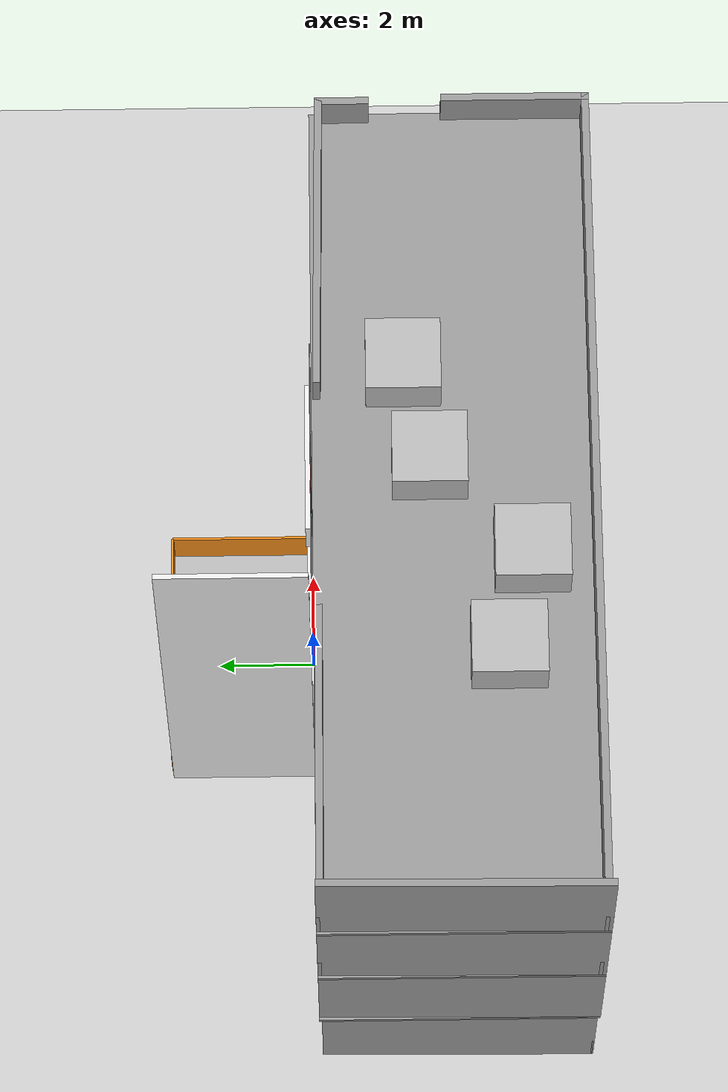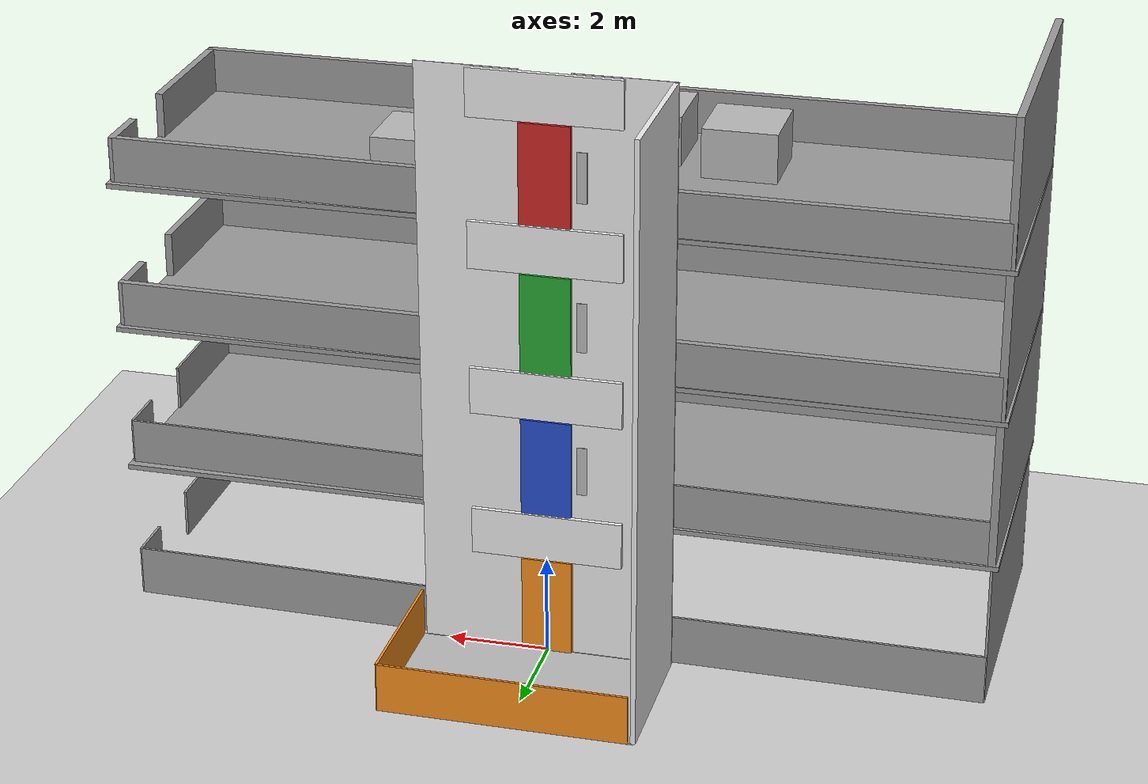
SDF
<sdf version="1.7">
 <world name="default">
  <model name="ground_plane">
   <static>1</static>
   <link name="link">
    <collision name="collision">
     <geometry><plane><normal>0 0 1</normal><size>100 100</size></plane></geometry>
     <surface><friction><ode><mu>100</mu><mu2>50</mu2></ode></friction></surface>
    </collision>
    <visual name="visual">
     <cast_shadows>0</cast_shadows>
     <geometry><plane><normal>0 0 1</normal><size>100 100</size></plane></geometry>
     <material>
      <script><uri>file://media/materials/scripts/gazebo.material</uri><name>Gazebo/Grey</name></script>
     </material>
    </visual>
   </link>
  </model>
  <light name="sun" type="directional">
   <pose>0 0 10 0 -0 0</pose>
   <diffuse>0.8 0.8 0.8 1</diffuse>
   <specular>0.2 0.2 0.2 1</specular>
   <attenuation>
    <range>1000</range>
    <constant>0.9</constant>
    <linear>0.01</linear>
    <quadratic>0.001</quadratic>
   </attenuation>
   <direction>-0.5 0.1 -0.9</direction>
   <spot><inner_angle>0</inner_angle><outer_angle>0</outer_angle><falloff>0</falloff></spot>
  </light>
  <model name="multifloor_building">
   <pose>0 -2.9 0 0 -0 0</pose>
   <link name="Floor_6">
    <collision name="Floor_6_Collision">
     <geometry><box><size>17.4048 5.71356 0.1</size></box></geometry>
     <pose>0 0 0.05 0 -0 0</pose>
    </collision>
    <visual name="Floor_6_Visual">
     <pose>0 0 0.05 0 -0 0</pose>
     <geometry><box><size>17.4048 5.71356 0.1</size></box></geometry>
     <material>
      <script><uri>file://media/materials/scripts/gazebo.material</uri><name>Gazebo/Grey</name></script>
      <ambient>1 1 1 1</ambient>
     </material>
     <meta><layer>1</layer></meta>
    </visual>
    <pose>-0.025045 -0.016611 2.88 0 -0 0</pose>
   </link>
   <link name="Floor_8">
    <collision name="Floor_8_Collision">
     <geometry><box><size>17.4549 5.71356 0.1</size></box></geometry>
     <pose>0 0 0.05 0 -0 0</pose>
    </collision>
    <visual name="Floor_8_Visual">
     <pose>0 0 0.05 0 -0 0</pose>
     <geometry><box><size>17.4549 5.71356 0.1</size></box></geometry>
     <material>
      <script><uri>file://media/materials/scripts/gazebo.material</uri><name>Gazebo/Grey</name></script>
      <ambient>1 1 1 1</ambient>
     </material>
     <meta><layer>2</layer></meta>
    </visual>
    <pose>-0 -0.016611 5.88 0 -0 0</pose>
   </link>
   <link name="Floor_9">
    <collision name="Floor_9_Collision">
     <geometry><box><size>17.4549 5.71356 0.1</size></box></geometry>
     <pose>0 0 0.05 0 -0 0</pose>
    </collision>
    <visual name="Floor_9_Visual">
     <pose>0 0 0.05 0 -0 0</pose>
     <geometry><box><size>17.4549 5.71356 0.1</size></box></geometry>
     <material>
      <script><uri>file://media/materials/scripts/gazebo.material</uri><name>Gazebo/Grey</name></script>
      <ambient>1 1 1 1</ambient>
     </material>
     <meta><layer>3</layer></meta>
    </visual>
    <pose>-0 -0.016611 8.88 0 -0 0</pose>
   </link>
   <link name="Wall_11">
    <collision name="Wall_11_Collision">
     <geometry><box><size>6.1448 0.05 1</size></box></geometry>
     <pose>0 0 0.5 0 -0 0</pose>
    </collision>
    <visual name="Wall_11_Visual">
     <pose>0 0 0.5 0 -0 0</pose>
     <geometry><box><size>6.1448 0.05 1</size></box></geometry>
     <material>
      <script><uri>file://media/materials/scripts/gazebo.material</uri><name>Gazebo/Grey</name></script>
      <ambient>1 1 1 1</ambient>
     </material>
     <meta><layer>0</layer></meta>
    </visual>
    <pose>5.55323 2.68693 0 0 -0 3.1273</pose>
   </link>
   <link name="Wall_13">
    <collision name="Wall_13_Collision">
     <geometry><box><size>2.9 0.05 1</size></box></geometry>
     <pose>0 0 0.5 0 -0 0</pose>
    </collision>
    <visual name="Wall_13_Visual">
     <pose>0 0 0.5 0 -0 0</pose>
     <geometry><box><size>2.9 0.05 1</size></box></geometry>
     <material>
      <script><uri>file://media/materials/scripts/gazebo.material</uri><name>Gazebo/Grey</name></script>
      <ambient>1 1 1 1</ambient>
     </material>
     <meta><layer>0</layer></meta>
    </visual>
    <pose>8.65232 -1.34161 0 0 -0 1.5708</pose>
   </link>
   <link name="Wall_15">
    <collision name="Wall_15_Collision">
     <geometry><box><size>1 0.05 1</size></box></geometry>
     <pose>0 0 0.5 0 -0 0</pose>
    </collision>
    <visual name="Wall_15_Visual">
     <pose>0 0 0.5 0 -0 0</pose>
     <geometry><box><size>1 0.05 1</size></box></geometry>
     <material>
      <script><uri>file://media/materials/scripts/gazebo.material</uri><name>Gazebo/Grey</name></script>
      <ambient>1 1 1 1</ambient>
     </material>
     <meta><layer>0</layer></meta>
    </visual>
    <pose>8.60032 2.16839 0 0 -0 -1.5708</pose>
   </link>
   <link name="Wall_5">
    <collision name="Wall_5_Collision">
     <geometry><box><size>6.28057 0.05 1</size></box></geometry>
     <pose>0 0 0.5 0 -0 0</pose>
    </collision>
    <visual name="Wall_5_Visual">
     <pose>0 0 0.5 0 -0 0</pose>
     <geometry><box><size>6.28057 0.05 1</size></box></geometry>
     <material>
      <script><uri>file://media/materials/scripts/gazebo.material</uri><name>Gazebo/Grey</name></script>
      <ambient>1 1 1 1</ambient>
     </material>
     <meta><layer>0</layer></meta>
    </visual>
    <pose>-5.45879 2.74982 0 0 -0 3.13686</pose>
   </link>
   <link name="Wall_53">
    <collision name="Wall_53_Collision">
     <geometry><box><size>6.30021 0.05 1</size></box></geometry>
     <pose>0 0 0.5 0 -0 0</pose>
    </collision>
    <visual name="Wall_53_Visual">
     <pose>0 0 0.5 0 -0 0</pose>
     <geometry><box><size>6.30021 0.05 1</size></box></geometry>
     <material>
      <script><uri>file://media/materials/scripts/gazebo.material</uri><name>Gazebo/Grey</name></script>
      <ambient>1 1 1 1</ambient>
     </material>
     <meta><layer>1</layer></meta>
    </visual>
    <pose>-5.46861 2.74973 2.88 0 -0 3.1369</pose>
   </link>
   <link name="Wall_54">
    <collision name="Wall_54_Collision">
     <geometry><box><size>5.7123 0.15 3</size></box></geometry>
     <pose>0 0 1.5 0 -0 0</pose>
    </collision>
    <visual name="Wall_54_Visual">
     <pose>0 0 1.5 0 -0 0</pose>
     <geometry><box><size>5.7123 0.15 3</size></box></geometry>
     <material>
      <script><uri>file://media/materials/scripts/gazebo.material</uri><name>Gazebo/Grey</name></script>
      <ambient>1 1 1 1</ambient>
     </material>
     <meta><layer>1</layer></meta>
    </visual>
    <pose>-8.62268 -0.016611 2.88 0 -0 -1.58122</pose>
   </link>
   <link name="Wall_55">
    <collision name="Wall_55_Collision">
     <geometry><box><size>17.354 0.05 1</size></box></geometry>
     <pose>0 0 0.5 0 -0 0</pose>
    </collision>
    <visual name="Wall_55_Visual">
     <pose>0 0 0.5 0 -0 0</pose>
     <geometry><box><size>17.354 0.05 1</size></box></geometry>
     <material>
      <script><uri>file://media/materials/scripts/gazebo.material</uri><name>Gazebo/Grey</name></script>
      <ambient>1 1 1 1</ambient>
     </material>
     <meta><layer>1</layer></meta>
    </visual>
    <pose>0.000322 -2.78211 2.88 0 -0 0.001791</pose>
   </link>
   <link name="Wall_56">
    <collision name="Wall_56_Collision">
     <geometry><box><size>6.1448 0.05 1</size></box></geometry>
     <pose>0 0 0.5 0 -0 0</pose>
    </collision>
    <visual name="Wall_56_Visual">
     <pose>0 0 0.5 0 -0 0</pose>
     <geometry><box><size>6.1448 0.05 1</size></box></geometry>
     <material>
      <script><uri>file://media/materials/scripts/gazebo.material</uri><name>Gazebo/Grey</name></script>
      <ambient>1 1 1 1</ambient>
     </material>
     <meta><layer>1</layer></meta>
    </visual>
    <pose>5.55323 2.68693 2.88 0 -0 3.1273</pose>
   </link>
   <link name="Wall_57">
    <collision name="Wall_57_Collision">
     <geometry><box><size>2.9 0.05 1</size></box></geometry>
     <pose>0 0 0.5 0 -0 0</pose>
    </collision>
    <visual name="Wall_57_Visual">
     <pose>0 0 0.5 0 -0 0</pose>
     <geometry><box><size>2.9 0.05 1</size></box></geometry>
     <material>
      <script><uri>file://media/materials/scripts/gazebo.material</uri><name>Gazebo/Grey</name></script>
      <ambient>1 1 1 1</ambient>
     </material>
     <meta><layer>1</layer></meta>
    </visual>
    <pose>8.65232 -1.34161 2.88 0 -0 1.5708</pose>
   </link>
   <link name="Wall_58">
    <collision name="Wall_58_Collision">
     <geometry><box><size>1 0.05 1</size></box></geometry>
     <pose>0 0 0.5 0 -0 0</pose>
    </collision>
    <visual name="Wall_58_Visual">
     <pose>0 0 0.5 0 -0 0</pose>
     <geometry><box><size>1 0.05 1</size></box></geometry>
     <material>
      <script><uri>file://media/materials/scripts/gazebo.material</uri><name>Gazebo/Grey</name></script>
      <ambient>1 1 1 1</ambient>
     </material>
     <meta><layer>1</layer></meta>
    </visual>
    <pose>8.60032 2.16839 2.88 0 -0 -1.5708</pose>
   </link>
   <link name="Wall_6">
    <collision name="Wall_6_Collision">
     <geometry><box><size>5.61248 0.05 2.88</size></box></geometry>
     <pose>0 0 1.44 0 -0 0</pose>
    </collision>
    <visual name="Wall_6_Visual">
     <pose>0 0 1.44 0 -0 0</pose>
     <geometry><box><size>5.61248 0.05 2.88</size></box></geometry>
     <material>
      <script><uri>file://media/materials/scripts/gazebo.material</uri><name>Gazebo/Grey</name></script>
      <ambient>1 1 1 1</ambient>
     </material>
     <meta><layer>0</layer></meta>
    </visual>
    <pose>-8.62292 -0.01652 0 0 -0 -1.58114</pose>
   </link>
   <link name="Wall_65">
    <collision name="Wall_65_Collision">
     <geometry><box><size>6.40021 0.15 1</size></box></geometry>
     <pose>0 0 0.5 0 -0 0</pose>
    </collision>
    <visual name="Wall_65_Visual">
     <pose>0 0 0.5 0 -0 0</pose>
     <geometry><box><size>6.40021 0.15 1</size></box></geometry>
     <material>
      <script><uri>file://media/materials/scripts/gazebo.material</uri><name>Gazebo/Grey</name></script>
      <ambient>1 1 1 1</ambient>
     </material>
     <meta><layer>2</layer></meta>
    </visual>
    <pose>-5.46861 2.74973 5.88 0 -0 3.1369</pose>
   </link>
   <link name="Wall_66">
    <collision name="Wall_66_Collision">
     <geometry><box><size>5.7123 0.15 3</size></box></geometry>
     <pose>0 0 1.5 0 -0 0</pose>
    </collision>
    <visual name="Wall_66_Visual">
     <pose>0 0 1.5 0 -0 0</pose>
     <geometry><box><size>5.7123 0.15 3</size></box></geometry>
     <material>
      <script><uri>file://media/materials/scripts/gazebo.material</uri><name>Gazebo/Grey</name></script>
      <ambient>1 1 1 1</ambient>
     </material>
     <meta><layer>2</layer></meta>
    </visual>
    <pose>-8.62268 -0.016611 5.88 0 -0 -1.58122</pose>
   </link>
   <link name="Wall_67">
    <collision name="Wall_67_Collision">
     <geometry><box><size>17.454 0.15 1</size></box></geometry>
     <pose>0 0 0.5 0 -0 0</pose>
    </collision>
    <visual name="Wall_67_Visual">
     <pose>0 0 0.5 0 -0 0</pose>
     <geometry><box><size>17.454 0.15 1</size></box></geometry>
     <material>
      <script><uri>file://media/materials/scripts/gazebo.material</uri><name>Gazebo/Grey</name></script>
      <ambient>1 1 1 1</ambient>
     </material>
     <meta><layer>2</layer></meta>
    </visual>
    <pose>0.000322 -2.78211 5.88 0 -0 0.001791</pose>
   </link>
   <link name="Wall_68">
    <collision name="Wall_68_Collision">
     <geometry><box><size>6.2448 0.15 1</size></box></geometry>
     <pose>0 0 0.5 0 -0 0</pose>
    </collision>
    <visual name="Wall_68_Visual">
     <pose>0 0 0.5 0 -0 0</pose>
     <geometry><box><size>6.2448 0.15 1</size></box></geometry>
     <material>
      <script><uri>file://media/materials/scripts/gazebo.material</uri><name>Gazebo/Grey</name></script>
      <ambient>1 1 1 1</ambient>
     </material>
     <meta><layer>2</layer></meta>
    </visual>
    <pose>5.55323 2.68693 5.88 0 -0 3.1273</pose>
   </link>
   <link name="Wall_69">
    <collision name="Wall_69_Collision">
     <geometry><box><size>3 0.15 1</size></box></geometry>
     <pose>0 0 0.5 0 -0 0</pose>
    </collision>
    <visual name="Wall_69_Visual">
     <pose>0 0 0.5 0 -0 0</pose>
     <geometry><box><size>3 0.15 1</size></box></geometry>
     <material>
      <script><uri>file://media/materials/scripts/gazebo.material</uri><name>Gazebo/Grey</name></script>
      <ambient>1 1 1 1</ambient>
     </material>
     <meta><layer>2</layer></meta>
    </visual>
    <pose>8.65232 -1.34161 5.88 0 -0 1.5708</pose>
   </link>
   <link name="Wall_7">
    <collision name="Wall_7_Collision">
     <geometry><box><size>17.354 0.05 1</size></box></geometry>
     <pose>0 0 0.5 0 -0 0</pose>
    </collision>
    <visual name="Wall_7_Visual">
     <pose>0 0 0.5 0 -0 0</pose>
     <geometry><box><size>17.354 0.05 1</size></box></geometry>
     <material>
      <script><uri>file://media/materials/scripts/gazebo.material</uri><name>Gazebo/Grey</name></script>
      <ambient>1 1 1 1</ambient>
     </material>
     <meta><layer>0</layer></meta>
    </visual>
    <pose>0.000322 -2.78211 0 0 -0 0.001791</pose>
   </link>
   <link name="Wall_70">
    <collision name="Wall_70_Collision">
     <geometry><box><size>1.1 0.15 1</size></box></geometry>
     <pose>0 0 0.5 0 -0 0</pose>
    </collision>
    <visual name="Wall_70_Visual">
     <pose>0 0 0.5 0 -0 0</pose>
     <geometry><box><size>1.1 0.15 1</size></box></geometry>
     <material>
      <script><uri>file://media/materials/scripts/gazebo.material</uri><name>Gazebo/Grey</name></script>
      <ambient>1 1 1 1</ambient>
     </material>
     <meta><layer>2</layer></meta>
    </visual>
    <pose>8.60032 2.16839 5.88 0 -0 -1.5708</pose>
   </link>
   <link name="Wall_71">
    <collision name="Wall_71_Collision">
     <geometry><box><size>6.40021 0.15 1</size></box></geometry>
     <pose>0 0 0.5 0 -0 0</pose>
    </collision>
    <visual name="Wall_71_Visual">
     <pose>0 0 0.5 0 -0 0</pose>
     <geometry><box><size>6.40021 0.15 1</size></box></geometry>
     <material>
      <script><uri>file://media/materials/scripts/gazebo.material</uri><name>Gazebo/Grey</name></script>
      <ambient>1 1 1 1</ambient>
     </material>
     <meta><layer>3</layer></meta>
    </visual>
    <pose>-5.46861 2.74973 8.88 0 -0 3.1369</pose>
   </link>
   <link name="Wall_72">
    <collision name="Wall_72_Collision">
     <geometry><box><size>5.7123 0.15 3</size></box></geometry>
     <pose>0 0 1.5 0 -0 0</pose>
    </collision>
    <visual name="Wall_72_Visual">
     <pose>0 0 1.5 0 -0 0</pose>
     <geometry><box><size>5.7123 0.15 3</size></box></geometry>
     <material>
      <script><uri>file://media/materials/scripts/gazebo.material</uri><name>Gazebo/Grey</name></script>
      <ambient>1 1 1 1</ambient>
     </material>
     <meta><layer>3</layer></meta>
    </visual>
    <pose>-8.62268 -0.016611 8.88 0 -0 -1.58122</pose>
   </link>
   <link name="Wall_73">
    <collision name="Wall_73_Collision">
     <geometry><box><size>17.454 0.15 1</size></box></geometry>
     <pose>0 0 0.5 0 -0 0</pose>
    </collision>
    <visual name="Wall_73_Visual">
     <pose>0 0 0.5 0 -0 0</pose>
     <geometry><box><size>17.454 0.15 1</size></box></geometry>
     <material>
      <script><uri>file://media/materials/scripts/gazebo.material</uri><name>Gazebo/Grey</name></script>
      <ambient>1 1 1 1</ambient>
     </material>
     <meta><layer>3</layer></meta>
    </visual>
    <pose>0.000322 -2.78211 8.88 0 -0 0.001791</pose>
   </link>
   <link name="Wall_74">
    <collision name="Wall_74_Collision">
     <geometry><box><size>6.2448 0.15 1</size></box></geometry>
     <pose>0 0 0.5 0 -0 0</pose>
    </collision>
    <visual name="Wall_74_Visual">
     <pose>0 0 0.5 0 -0 0</pose>
     <geometry><box><size>6.2448 0.15 1</size></box></geometry>
     <material>
      <script><uri>file://media/materials/scripts/gazebo.material</uri><name>Gazebo/Grey</name></script>
      <ambient>1 1 1 1</ambient>
     </material>
     <meta><layer>3</layer></meta>
    </visual>
    <pose>5.55323 2.68693 8.88 0 -0 3.1273</pose>
   </link>
   <link name="Wall_75">
    <collision name="Wall_75_Collision">
     <geometry><box><size>3 0.15 1</size></box></geometry>
     <pose>0 0 0.5 0 -0 0</pose>
    </collision>
    <visual name="Wall_75_Visual">
     <pose>0 0 0.5 0 -0 0</pose>
     <geometry><box><size>3 0.15 1</size></box></geometry>
     <material>
      <script><uri>file://media/materials/scripts/gazebo.material</uri><name>Gazebo/Grey</name></script>
      <ambient>1 1 1 1</ambient>
     </material>
     <meta><layer>3</layer></meta>
    </visual>
    <pose>8.65232 -1.34161 8.88 0 -0 1.5708</pose>
   </link>
   <link name="Wall_76">
    <collision name="Wall_76_Collision">
     <geometry><box><size>1.1 0.15 1</size></box></geometry>
     <pose>0 0 0.5 0 -0 0</pose>
    </collision>
    <visual name="Wall_76_Visual">
     <pose>0 0 0.5 0 -0 0</pose>
     <geometry><box><size>1.1 0.15 1</size></box></geometry>
     <material>
      <script><uri>file://media/materials/scripts/gazebo.material</uri><name>Gazebo/Grey</name></script>
      <ambient>1 1 1 1</ambient>
     </material>
     <meta><layer>3</layer></meta>
    </visual>
    <pose>8.60032 2.16839 8.88 0 -0 -1.5708</pose>
   </link>
   <static>1</static>
  </model>
  <model name="objects">
   <link name="cube001">
    <visual name="cube001_visual">
     <pose>0 0 0.5 0 -0 0</pose>
     <geometry><box><size>0.5 0.5 1</size></box></geometry>
    </visual>
    <collision name="cube001_collision">
     <pose>0 0 0.5 0 -0 0</pose>
     <geometry><box><size>0.5 0.5 1</size></box></geometry>
    </collision>
    <inertial>
     <inertia><ixx>1</ixx><ixy>0</ixy><ixz>0</ixz><iyy>1</iyy><iyz>0</iyz><izz>1</izz></inertia>
     <mass>1</mass>
    </inertial>
   </link>
   <joint name="joint_cube001" type="fixed"><parent>world</parent><child>cube001</child></joint>
   <link name="cube002">
    <visual name="cube002_visual">
     <pose>-1 0 3.5 0 -0 0</pose>
     <geometry><box><size>0.5 0.5 1</size></box></geometry>
    </visual>
    <collision name="cube002_collision">
     <pose>-1 0 3.5 0 -0 0</pose>
     <geometry><box><size>0.5 0.5 1</size></box></geometry>
    </collision>
    <inertial>
     <inertia><ixx>1</ixx><ixy>0</ixy><ixz>0</ixz><iyy>1</iyy><iyz>0</iyz><izz>1</izz></inertia>
     <mass>1</mass>
    </inertial>
   </link>
   <joint name="joint_cube002" type="fixed"><parent>world</parent><child>cube002</child></joint>
   <link name="cube003">
    <visual name="cube003_visual">
     <pose>1 0 3.5 0 -0 0</pose>
     <geometry><box><size>0.5 0.5 1</size></box></geometry>
    </visual>
    <collision name="cube003_collision">
     <pose>1 0 3.5 0 -0 0</pose>
     <geometry><box><size>0.5 0.5 1</size></box></geometry>
    </collision>
    <inertial>
     <inertia><ixx>1</ixx><ixy>0</ixy><ixz>0</ixz><iyy>1</iyy><iyz>0</iyz><izz>1</izz></inertia>
     <mass>1</mass>
    </inertial>
   </link>
   <joint name="joint_cube003" type="fixed"><parent>world</parent><child>cube003</child></joint>
   <link name="cube004">
    <visual name="cube004_visual">
     <pose>0 0 6.5 0 -0 0.8</pose>
     <geometry><box><size>1 1 1</size></box></geometry>
    </visual>
    <collision name="cube004_collision">
     <pose>0 0 6.5 0 -0 0.8</pose>
     <geometry><box><size>1 1 1</size></box></geometry>
    </collision>
    <inertial>
     <inertia><ixx>1</ixx><ixy>0</ixy><ixz>0</ixz><iyy>1</iyy><iyz>0</iyz><izz>1</izz></inertia>
     <mass>1</mass>
    </inertial>
   </link>
   <joint name="joint_cube004" type="fixed"><parent>world</parent><child>cube004</child></joint>
   <link name="cube005">
    <visual name="cube005_visual">
     <pose>-1.5 1 6.5 0 -0 0</pose>
     <geometry><box><size>0.5 0.5 1</size></box></geometry>
    </visual>
    <collision name="cube005_collision">
     <pose>-1.5 1 6.5 0 -0 0</pose>
     <geometry><box><size>0.5 0.5 1</size></box></geometry>
    </collision>
    <inertial>
     <inertia><ixx>1</ixx><ixy>0</ixy><ixz>0</ixz><iyy>1</iyy><iyz>0</iyz><izz>1</izz></inertia>
     <mass>1</mass>
    </inertial>
   </link>
   <joint name="joint_cube005" type="fixed"><parent>world</parent><child>cube005</child></joint>
   <link name="cube006">
    <visual name="cube006_visual">
     <pose>1.5 -1.5 6.5 0 -0 0</pose>
     <geometry><box><size>1 1 1</size></box></geometry>
    </visual>
    <collision name="cube006_collision">
     <pose>1.5 -1.5 6.5 0 -0 0</pose>
     <geometry><box><size>1 1 1</size></box></geometry>
    </collision>
    <inertial>
     <inertia><ixx>1</ixx><ixy>0</ixy><ixz>0</ixz><iyy>1</iyy><iyz>0</iyz><izz>1</izz></inertia>
     <mass>1</mass>
    </inertial>
   </link>
   <joint name="joint_cube006" type="fixed"><parent>world</parent><child>cube006</child></joint>
   <link name="cube007">
    <visual name="cube007_visual">
     <pose>-1 -1.5 9.5 0 -0 0</pose>
     <geometry><box><size>1.5 1.5 1</size></box></geometry>
    </visual>
    <collision name="cube007_collision">
     <pose>-1 -1.5 9.5 0 -0 0</pose>
     <geometry><box><size>1.5 1.5 1</size></box></geometry>
    </collision>
    <inertial>
     <inertia><ixx>1</ixx><ixy>0</ixy><ixz>0</ixz><iyy>1</iyy><iyz>0</iyz><izz>1</izz></inertia>
     <mass>1</mass>
    </inertial>
   </link>
   <joint name="joint_cube007" type="fixed"><parent>world</parent><child>cube007</child></joint>
   <link name="cube008">
    <visual name="cube008_visual">
     <pose>1 0.5 9.5 0 -0 0</pose>
     <geometry><box><size>1.5 1.5 1</size></box></geometry>
    </visual>
    <collision name="cube008_collision">
     <pose>1 0.5 9.5 0 -0 0</pose>
     <geometry><box><size>1.5 1.5 1</size></box></geometry>
    </collision>
    <inertial>
     <inertia><ixx>1</ixx><ixy>0</ixy><ixz>0</ixz><iyy>1</iyy><iyz>0</iyz><izz>1</izz></inertia>
     <mass>1</mass>
    </inertial>
   </link>
   <joint name="joint_cube008" type="fixed"><parent>world</parent><child>cube008</child></joint>
   <link name="cube009">
    <visual name="cube009_visual">
     <pose>-3 -1 9.5 0 -0 0</pose>
     <geometry><box><size>1.5 1.5 1</size></box></geometry>
    </visual>
    <collision name="cube009_collision">
     <pose>-3 -1 9.5 0 -0 0</pose>
     <geometry><box><size>1.5 1.5 1</size></box></geometry>
    </collision>
    <inertial>
     <inertia><ixx>1</ixx><ixy>0</ixy><ixz>0</ixz><iyy>1</iyy><iyz>0</iyz><izz>1</izz></inertia>
     <mass>1</mass>
    </inertial>
   </link>
   <joint name="joint_cube009" type="fixed"><parent>world</parent><child>cube009</child></joint>
   <link name="cube010">
    <visual name="cube010_visual">
     <pose>3 1 9.5 0 -0 0</pose>
     <geometry><box><size>1.5 1.5 1</size></box></geometry>
    </visual>
    <collision name="cube010_collision">
     <pose>3 1 9.5 0 -0 0</pose>
     <geometry><box><size>1.5 1.5 1</size></box></geometry>
    </collision>
    <inertial>
     <inertia><ixx>1</ixx><ixy>0</ixy><ixz>0</ixz><iyy>1</iyy><iyz>0</iyz><izz>1</izz></inertia>
     <mass>1</mass>
    </inertial>
   </link>
   <joint name="joint_cube010" type="fixed"><parent>world</parent><child>cube010</child></joint>
   <pose>0 -2.9 -0 0 -0 0</pose>
  </model>
  <model name="sliding_boxes">
   <link name="level01_support">
    <pose>0 0 2.5 0 -0 0</pose>
    <visual name="support01_visual">
     <geometry><box><size>3 0.1 0.95</size></box></geometry>
     <material>
      <script><uri>file://media/materials/scripts/gazebo.material</uri><name>Gazebo/White</name></script>
     </material>
    </visual>
    <collision name="support01_collision"><geometry><box><size>3 0.1 0.95</size></box></geometry></collision>
    <inertial>
     <inertia><ixx>1</ixx><ixy>0</ixy><ixz>0</ixz><iyy>1</iyy><iyz>0</iyz><izz>1</izz></inertia>
     <mass>1</mass>
    </inertial>
   </link>
   <link name="level02_support">
    <pose>0 0 5.5 0 -0 0</pose>
    <visual name="support02_visual">
     <geometry><box><size>3 0.1 0.95</size></box></geometry>
     <material>
      <script><uri>file://media/materials/scripts/gazebo.material</uri><name>Gazebo/White</name></script>
     </material>
    </visual>
    <collision name="support02_collision"><geometry><box><size>3 0.1 0.95</size></box></geometry></collision>
    <inertial>
     <inertia><ixx>1</ixx><ixy>0</ixy><ixz>0</ixz><iyy>1</iyy><iyz>0</iyz><izz>1</izz></inertia>
     <mass>1</mass>
    </inertial>
   </link>
   <link name="level03_support">
    <pose>0 0 8.5 0 -0 0</pose>
    <visual name="support03_visual">
     <geometry><box><size>3 0.1 0.95</size></box></geometry>
     <material>
      <script><uri>file://media/materials/scripts/gazebo.material</uri><name>Gazebo/White</name></script>
     </material>
    </visual>
    <collision name="support03_collision"><geometry><box><size>3 0.1 0.95</size></box></geometry></collision>
    <inertial>
     <inertia><ixx>1</ixx><ixy>0</ixy><ixz>0</ixz><iyy>1</iyy><iyz>0</iyz><izz>1</izz></inertia>
     <mass>1</mass>
    </inertial>
   </link>
   <link name="level04_support">
    <pose>0 0 11.5 0 -0 0</pose>
    <visual name="support04_visual">
     <geometry><box><size>3 0.1 0.95</size></box></geometry>
     <material>
      <script><uri>file://media/materials/scripts/gazebo.material</uri><name>Gazebo/White</name></script>
     </material>
    </visual>
    <collision name="support04_collision"><geometry><box><size>3 0.1 0.95</size></box></geometry></collision>
    <inertial>
     <inertia><ixx>1</ixx><ixy>0</ixy><ixz>0</ixz><iyy>1</iyy><iyz>0</iyz><izz>1</izz></inertia>
     <mass>1</mass>
    </inertial>
   </link>
   <link name="front_wall_right">
    <pose>1.5 -0.05 6 0 -0 0</pose>
    <visual name="front_wall_right_visual">
     <geometry><box><size>2 0.01 12</size></box></geometry>
     <material>
      <script><uri>file://media/materials/scripts/gazebo.material</uri><name>Gazebo/White</name></script>
     </material>
    </visual>
    <collision name="front_wall_right_collision">
     <geometry><box><size>2 0.01 12</size></box></geometry>
    </collision>
    <inertial>
     <inertia><ixx>1</ixx><ixy>0</ixy><ixz>0</ixz><iyy>1</iyy><iyz>0</iyz><izz>1</izz></inertia>
     <mass>1</mass>
    </inertial>
   </link>
   <link name="front_wall_left">
    <pose>-1.5 -0.05 6 0 -0 0</pose>
    <visual name="front_wall_left_visual">
     <geometry><box><size>2 0.01 12</size></box></geometry>
     <material>
      <script><uri>file://media/materials/scripts/gazebo.material</uri><name>Gazebo/White</name></script>
     </material>
    </visual>
    <collision name="front_wall_left_collision"><geometry><box><size>2 0.01 12</size></box></geometry></collision>
    <inertial>
     <inertia><ixx>1</ixx><ixy>0</ixy><ixz>0</ixz><iyy>1</iyy><iyz>0</iyz><izz>1</izz></inertia>
     <mass>1</mass>
    </inertial>
   </link>
   <link name="elevator_support_left">
    <gravity>0</gravity>
    <pose>-2.45 1.5 6 0 -0 0</pose>
    <visual name="elevator_support_left_visual">
     <geometry><box><size>0.1 3 12</size></box></geometry>
     <material>
      <script><uri>file://media/materials/scripts/gazebo.material</uri><name>Gazebo/White</name></script>
     </material>
    </visual>
    <collision name="elevator_support_left_collision">
     <geometry><box><size>0.1 3 12</size></box></geometry>
    </collision>
    <inertial>
     <inertia><ixx>1</ixx><ixy>0</ixy><ixz>0</ixz><iyy>1</iyy><iyz>0</iyz><izz>1</izz></inertia>
     <mass>1</mass>
    </inertial>
   </link>
   <link name="base">
    <inertial>
     <inertia><ixx>1</ixx><ixy>0</ixy><ixz>0</ixz><iyy>1</iyy><iyz>0</iyz><izz>1</izz></inertia>
     <mass>1</mass>
    </inertial>
   </link>
   <link name="elevator">
    <gravity>0</gravity>
    <visual name="elevator_visual"><geometry><box><size>5 3 0.03</size></box></geometry></visual>
    <collision name="elevator_collision">
     <geometry><box><size>4.9 2.95 0.029</size></box></geometry>
     <surface><friction><ode><mu>1000</mu><mu2>1000</mu2></ode></friction></surface>
    </collision>
    <pose>0.05 1.5 0 0 -0 0</pose>
    <inertial>
     <inertia><ixx>1</ixx><ixy>0</ixy><ixz>0</ixz><iyy>1</iyy><iyz>0</iyz><izz>1</izz></inertia>
     <mass>1</mass>
    </inertial>
   </link>
   <link name="elevator_handle_right">
    <gravity>0</gravity>
    <visual name="elevator_handle_right_visual">
     <geometry><box><size>0.05 3 1</size></box></geometry>
     <material>
      <script><uri>file://media/materials/scripts/gazebo.material</uri><name>Gazebo/Orange</name></script>
     </material>
    </visual>
    <collision name="elevator_handle_right_collision">
     <geometry><box><size>0.05 3 1</size></box></geometry>
    </collision>
    <pose>2.55 1.5 0.5 0 -0 0</pose>
    <inertial>
     <inertia><ixx>1</ixx><ixy>0</ixy><ixz>0</ixz><iyy>1</iyy><iyz>0</iyz><izz>1</izz></inertia>
     <mass>1</mass>
    </inertial>
   </link>
   <link name="elevator_handle_rear">
    <gravity>0</gravity>
    <visual name="elevator_handle_rear_visual">
     <geometry><box><size>4.9 0.05 1</size></box></geometry>
     <material>
      <script><uri>file://media/materials/scripts/gazebo.material</uri><name>Gazebo/Orange</name></script>
     </material>
    </visual>
    <collision name="elevator_handle_rear_collision">
     <geometry><box><size>0.05 3 1</size></box></geometry>
    </collision>
    <pose>0.1 3 0.5 0 -0 0</pose>
    <inertial>
     <inertia><ixx>1</ixx><ixy>0</ixy><ixz>0</ixz><iyy>1</iyy><iyz>0</iyz><izz>1</izz></inertia>
     <mass>1</mass>
    </inertial>
   </link>
   <link name="box1">
    <visual name="box1_visual">
     <geometry><box><size>1 0.1 2</size></box></geometry>
     <material>
      <script><uri>file://media/materials/scripts/gazebo.material</uri><name>Gazebo/Orange</name></script>
     </material>
    </visual>
    <collision name="box1_collision"><geometry><box><size>1 0.1 2</size></box></geometry></collision>
    <pose>0 0 1 0 -0 0</pose>
    <inertial>
     <inertia><ixx>1</ixx><ixy>0</ixy><ixz>0</ixz><iyy>1</iyy><iyz>0</iyz><izz>1</izz></inertia>
     <mass>1</mass>
    </inertial>
   </link>
   <link name="box2">
    <visual name="box2_visual">
     <geometry><box><size>1 0.1 2</size></box></geometry>
     <material>
      <script><uri>file://media/materials/scripts/gazebo.material</uri><name>Gazebo/Blue</name></script>
     </material>
    </visual>
    <collision name="box2_collision"><geometry><box><size>1 0.1 2</size></box></geometry></collision>
    <pose>0 0 4 0 -0 0</pose>
    <inertial>
     <inertia><ixx>1</ixx><ixy>0</ixy><ixz>0</ixz><iyy>1</iyy><iyz>0</iyz><izz>1</izz></inertia>
     <mass>1</mass>
    </inertial>
   </link>
   <link name="box3">
    <visual name="box3_visual">
     <geometry><box><size>1 0.1 2</size></box></geometry>
     <material>
      <script><uri>file://media/materials/scripts/gazebo.material</uri><name>Gazebo/Green</name></script>
     </material>
    </visual>
    <collision name="box3_collision"><geometry><box><size>1 0.1 2</size></box></geometry></collision>
    <pose>0 0 7 0 -0 0</pose>
    <inertial>
     <inertia><ixx>1</ixx><ixy>0</ixy><ixz>0</ixz><iyy>1</iyy><iyz>0</iyz><izz>1</izz></inertia>
     <mass>1</mass>
    </inertial>
   </link>
   <link name="box4">
    <visual name="box4_visual">
     <geometry><box><size>1 0.1 2</size></box></geometry>
     <material>
      <script><uri>file://media/materials/scripts/gazebo.material</uri><name>Gazebo/Red</name></script>
     </material>
    </visual>
    <collision name="box4_collision"><geometry><box><size>1 0.1 2</size></box></geometry></collision>
    <pose>0 0 10 0 -0 0</pose>
    <inertial>
     <inertia><ixx>1</ixx><ixy>0</ixy><ixz>0</ixz><iyy>1</iyy><iyz>0</iyz><izz>1</izz></inertia>
     <mass>1</mass>
    </inertial>
   </link>
   <link name="floor01_pannel_out">
    <visual name="floor01_pannel_out_visual">
     <geometry><box><size>0.1 0.01 0.5</size></box></geometry>
     <material>
      <script><uri>file://media/materials/scripts/pannel01.material</uri><name>Pannel01</name></script>
     </material>
    </visual>
    <pose>0.6 -0.06 4.2 0 -0 0</pose>
    <inertial>
     <inertia><ixx>1</ixx><ixy>0</ixy><ixz>0</ixz><iyy>1</iyy><iyz>0</iyz><izz>1</izz></inertia>
     <mass>1</mass>
    </inertial>
   </link>
   <joint name="floor01_pannel_out_joint" type="fixed">
    <parent>base</parent>
    <child>floor01_pannel_out</child>
   </joint>
   <link name="floor02_pannel_out">
    <visual name="floor02_pannel_out_visual">
     <geometry><box><size>0.1 0.01 0.5</size></box></geometry>
     <material>
      <script><uri>file://media/materials/scripts/pannel02.material</uri><name>Pannel02</name></script>
     </material>
    </visual>
    <pose>0.6 -0.06 7.2 0 -0 0</pose>
    <inertial>
     <inertia><ixx>1</ixx><ixy>0</ixy><ixz>0</ixz><iyy>1</iyy><iyz>0</iyz><izz>1</izz></inertia>
     <mass>1</mass>
    </inertial>
   </link>
   <joint name="floor02_pannel_out_joint" type="fixed">
    <parent>base</parent>
    <child>floor02_pannel_out</child>
   </joint>
   <link name="floor03_pannel_out">
    <visual name="floor03_pannel_out_visual">
     <geometry><box><size>0.1 0.01 0.5</size></box></geometry>
     <material>
      <script><uri>file://media/materials/scripts/pannel03.material</uri><name>Pannel03</name></script>
     </material>
    </visual>
    <pose>0.6 -0.06 10.2 0 -0 0</pose>
    <inertial>
     <inertia><ixx>1</ixx><ixy>0</ixy><ixz>0</ixz><iyy>1</iyy><iyz>0</iyz><izz>1</izz></inertia>
     <mass>1</mass>
    </inertial>
   </link>
   <joint name="floor03_pannel_out_joint" type="fixed">
    <parent>base</parent>
    <child>floor03_pannel_out</child>
   </joint>
   <link name="floor01_pannel_in">
    <visual name="floor01_pannel_in_visual">
     <geometry><box><size>0.2 0.01 1</size></box></geometry>
     <material>
      <script><uri>file://media/materials/scripts/pannelIn01.material</uri><name>PannelIn01</name></script>
     </material>
    </visual>
    <pose>-0.7 -0.03 4 0 -0 0</pose>
    <inertial>
     <inertia><ixx>1</ixx><ixy>0</ixy><ixz>0</ixz><iyy>1</iyy><iyz>0</iyz><izz>1</izz></inertia>
     <mass>1</mass>
    </inertial>
   </link>
   <joint name="floor01_pannel_in_joint" type="fixed">
    <parent>base</parent>
    <child>floor01_pannel_in</child>
   </joint>
   <link name="floor02_pannel_in">
    <visual name="floor02_pannel_in_visual">
     <geometry><box><size>0.2 0.01 1</size></box></geometry>
     <material>
      <script><uri>file://media/materials/scripts/pannelIn02.material</uri><name>PannelIn02</name></script>
     </material>
    </visual>
    <pose>-0.7 -0.03 7 0 -0 0</pose>
    <inertial>
     <inertia><ixx>1</ixx><ixy>0</ixy><ixz>0</ixz><iyy>1</iyy><iyz>0</iyz><izz>1</izz></inertia>
     <mass>1</mass>
    </inertial>
   </link>
   <joint name="floor02_pannel_in_joint" type="fixed">
    <parent>base</parent>
    <child>floor02_pannel_in</child>
   </joint>
   <link name="light_link">
    <light name="point_light_floor01_in" type="point">
     <pose>-0.6 1 4 0 -0 0</pose>
     <diffuse>1 1 1 1</diffuse>
     <specular>0.1 0.1 0.1 1</specular>
     <attenuation>
      <range>10</range>
      <linear>0.2</linear>
      <constant>0.1</constant>
      <quadratic>0.05</quadratic>
     </attenuation>
     <direction>0 0 -1</direction>
     <spot><inner_angle>0</inner_angle><outer_angle>0</outer_angle><falloff>0</falloff></spot>
    </light>
    <light name="point_light_floor01_out" type="point">
     <pose>0.6 -1 4 0 -0 0</pose>
     <diffuse>1 1 1 1</diffuse>
     <specular>0.1 0.1 0.1 1</specular>
     <attenuation>
      <range>10</range>
      <linear>0.2</linear>
      <constant>0.1</constant>
      <quadratic>0.05</quadratic>
     </attenuation>
     <direction>0 0 -1</direction>
     <spot><inner_angle>0</inner_angle><outer_angle>0</outer_angle><falloff>0</falloff></spot>
    </light>
    <light name="point_light_floor02_in" type="point">
     <pose>-0.6 1 7 0 -0 0</pose>
     <diffuse>1 1 1 1</diffuse>
     <specular>0.1 0.1 0.1 1</specular>
     <attenuation>
      <range>10</range>
      <linear>0.2</linear>
      <constant>0.1</constant>
      <quadratic>0.05</quadratic>
     </attenuation>
     <direction>0 0 -1</direction>
     <spot><inner_angle>0</inner_angle><outer_angle>0</outer_angle><falloff>0</falloff></spot>
    </light>
    <light name="point_light_floor02_out" type="point">
     <pose>0.6 -1 7 0 -0 0</pose>
     <diffuse>1 1 1 1</diffuse>
     <specular>0.1 0.1 0.1 1</specular>
     <attenuation>
      <range>10</range>
      <linear>0.2</linear>
      <constant>0.1</constant>
      <quadratic>0.05</quadratic>
     </attenuation>
     <direction>0 0 -1</direction>
     <spot><inner_angle>0</inner_angle><outer_angle>0</outer_angle><falloff>0</falloff></spot>
    </light>
    <light name="point_light_floor03_in" type="point">
     <pose>-0.6 1 10 0 -0 0</pose>
     <diffuse>1 1 1 1</diffuse>
     <specular>0.1 0.1 0.1 1</specular>
     <attenuation>
      <range>10</range>
      <linear>0.2</linear>
      <constant>0.1</constant>
      <quadratic>0.05</quadratic>
     </attenuation>
     <direction>0 0 -1</direction>
     <spot><inner_angle>0</inner_angle><outer_angle>0</outer_angle><falloff>0</falloff></spot>
    </light>
    <inertial>
     <inertia><ixx>1</ixx><ixy>0</ixy><ixz>0</ixz><iyy>1</iyy><iyz>0</iyz><izz>1</izz></inertia>
     <mass>1</mass>
    </inertial>
   </link>
   <joint name="light_joint" type="fixed"><parent>base</parent><child>light_link</child></joint>
   <link name="floor03_pannel_in">
    <visual name="floor03_pannel_in_visual">
     <geometry><box><size>0.2 0.01 1</size></box></geometry>
     <material>
      <script><uri>file://media/materials/scripts/pannelIn03.material</uri><name>PannelIn03</name></script>
     </material>
    </visual>
    <pose>-0.7 -0.03 10 0 -0 0</pose>
    <inertial>
     <inertia><ixx>1</ixx><ixy>0</ixy><ixz>0</ixz><iyy>1</iyy><iyz>0</iyz><izz>1</izz></inertia>
     <mass>1</mass>
    </inertial>
   </link>
   <joint name="floor03_pannel_in_joint" type="fixed">
    <parent>base</parent>
    <child>floor03_pannel_in</child>
   </joint>
   <joint name="connector" type="fixed"><parent>base</parent><child>Floor_6</child></joint>
   <joint name="joint_front_wall_left" type="fixed">
    <parent>level03_support</parent>
    <child>front_wall_left</child>
   </joint>
   <joint name="joint_front_wall_right" type="fixed">
    <parent>level03_support</parent>
    <child>front_wall_right</child>
   </joint>
   <joint name="joint_elevator_support_left" type="fixed">
    <parent>base</parent>
    <child>elevator_support_left</child>
   </joint>
   <joint name="joint_elevator_handle_right" type="fixed">
    <parent>elevator</parent>
    <child>elevator_handle_right</child>
   </joint>
   <joint name="joint_elevator_handle_rear" type="fixed">
    <parent>elevator</parent>
    <child>elevator_handle_rear</child>
   </joint>
   <joint name="elevator_joint" type="prismatic">
    <parent>elevator_support_left</parent>
    <child>elevator</child>
    <axis>
     <xyz>0 0 1</xyz>
     <limit><lower>0</lower><upper>13</upper><effort>3e+10</effort><velocity>100</velocity></limit>
     <dynamics><spring_reference>0</spring_reference><spring_stiffness>0</spring_stiffness></dynamics>
    </axis>
   </joint>
   <joint name="joint1" type="prismatic">
    <parent>base</parent>
    <child>box1</child>
    <pose>0 0 1 0 -0 0</pose>
    <axis>
     <xyz>1 0 0</xyz>
     <limit><lower>-0.5</lower><upper>1.5</upper><effort>30</effort><velocity>0.5</velocity></limit>
     <dynamics><spring_reference>0</spring_reference><spring_stiffness>0</spring_stiffness></dynamics>
    </axis>
   </joint>
   <joint name="joint2" type="prismatic">
    <parent>level01_support</parent>
    <child>box2</child>
    <axis>
     <xyz>1 0 0</xyz>
     <limit><lower>-0.5</lower><upper>1.5</upper><effort>30</effort><velocity>0.5</velocity></limit>
     <dynamics><spring_reference>0</spring_reference><spring_stiffness>0</spring_stiffness></dynamics>
    </axis>
   </joint>
   <joint name="joint3" type="prismatic">
    <parent>level02_support</parent>
    <child>box3</child>
    <pose>-0.5 0 0 0 -0 0</pose>
    <axis>
     <xyz>1 0 0</xyz>
     <limit><lower>-0.5</lower><upper>1.5</upper><effort>30</effort><velocity>0.5</velocity></limit>
     <dynamics><spring_reference>0</spring_reference><spring_stiffness>0</spring_stiffness></dynamics>
    </axis>
   </joint>
   <joint name="joint4" type="prismatic">
    <parent>level03_support</parent>
    <child>box4</child>
    <axis>
     <xyz>1 0 0</xyz>
     <limit><lower>-0.5</lower><upper>1.5</upper><effort>30</effort><velocity>0.5</velocity></limit>
     <dynamics><spring_reference>0</spring_reference><spring_stiffness>0</spring_stiffness></dynamics>
    </axis>
   </joint>
   <joint name="joint_level01_support" type="fixed">
    <parent>base</parent>
    <child>level01_support</child>
    <pose>0 0 4.1 0 -0 0</pose>
   </joint>
   <joint name="joint_level02_support" type="fixed">
    <parent>base</parent>
    <child>level02_support</child>
    <pose>0 0 7.1 0 -0 0</pose>
   </joint>
   <joint name="joint_level03_support" type="fixed">
    <parent>base</parent>
    <child>level03_support</child>
    <pose>0 0 10.1 0 -0 0</pose>
   </joint>
   <joint name="joint_level04_support" type="fixed">
    <parent>base</parent>
    <child>level04_support</child>
    <pose>0 0 13.1 0 -0 0</pose>
   </joint>
   <plugin name="multi_floor_door_control" filename="libmulti_floor_door_control.so"/>
  </model>
  <gravity>0 0 -9.8</gravity>
  <magnetic_field>6e-06 2.3e-05 -4.2e-05</magnetic_field>
  <atmosphere type="adiabatic"/>
  <physics type="ode">
   <max_step_size>0.001</max_step_size>
   <real_time_factor>1</real_time_factor>
   <real_time_update_rate>1000</real_time_update_rate>
  </physics>
  <scene><ambient>0.4 0.4 0.4 1</ambient><background>0.7 0.7 0.7 1</background><shadows>1</shadows></scene>
  <audio><device>default</device></audio>
  <spherical_coordinates>
   <surface_model>EARTH_WGS84</surface_model>
   <latitude_deg>0</latitude_deg>
   <longitude_deg>0</longitude_deg>
   <elevation>0</elevation>
   <heading_deg>0</heading_deg>
  </spherical_coordinates>
  <model name="docking_station">
   <link name="docking_station_base_link">
    <inertial>
     <mass>100</mass>
     <inertia><ixx>1</ixx><ixy>0</ixy><ixz>0</ixz><iyy>1</iyy><iyz>0</iyz><izz>1</izz></inertia>
    </inertial>
    <collision name="docking_station_base_link_collision">
     <geometry>
      <mesh>
       <scale>0.001 0.001 0.001</scale>
       <uri>file:///home/achiraubuntu/navigation_ws/src/smrr_description/meshes/Docking_station_assembly.STL</uri>
      </mesh>
     </geometry>
    </collision>
    <visual name="docking_station_base_link_visual">
     <geometry>
      <mesh>
       <scale>0.001 0.001 0.001</scale>
       <uri>file:///home/achiraubuntu/navigation_ws/src/smrr_description/meshes/Docking_station_assembly.STL</uri>
      </mesh>
     </geometry>
     <material>
      <script><name>Gazebo/Grey</name><uri>file://media/materials/scripts/gazebo.material</uri></script>
     </material>
    </visual>
    <visual name="apriltag_marker">
     <pose>0.091 0.35 -0.018 0 0 1.5708</pose>
     <geometry><box><size>0.2 0.2 0.001</size></box></geometry>
     <material>
      <ambient>1 1 1 1</ambient>
      <diffuse>1 1 1 1</diffuse>
      <specular>0.1 0.1 0.1 1</specular>
      <emissive>0.2 0.2 0.2 1</emissive>
      <lighting>1</lighting>
      <script>
       <uri>file:///home/achiraubuntu/navigation_ws/src/gazebo_elevator_plugin/model/Apriltag36_11_00000/materials/scripts</uri>
       <uri>file:///home/achiraubuntu/navigation_ws/src/gazebo_elevator_plugin/model/Apriltag36_11_00000/materials/textures</uri>
       <name>Apriltag36_11_00000</name>
      </script>
     </material>
    </visual>
   </link>
   <pose>4 -0.400001 0.001252 1.57076 -0 0</pose>
  </model>
 </world>
</sdf>
